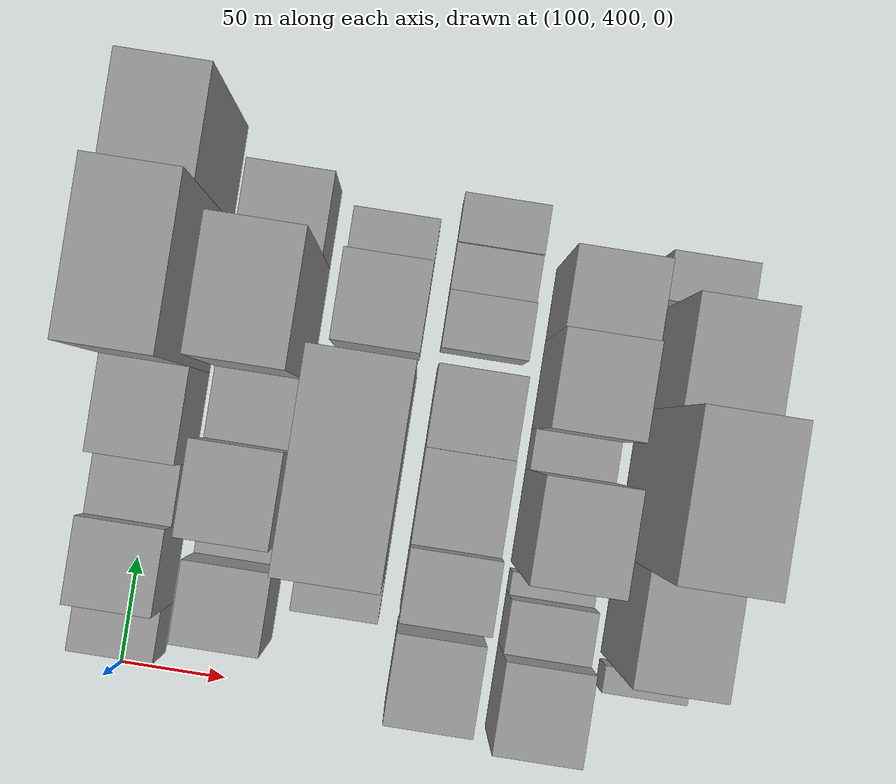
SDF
<sdf version="1.6">
 <world name="default">
  <model name="building_34">
   <static>1</static>
   <pose>100.0000 419.4224 0 0.000000 0.000000 0.000000</pose>
   <link name="link">
    <pose>0 0 21.00 0 0 0</pose>
    <collision name="collision"><geometry><box><size>40.0000 24.1710 42.0000</size></box></geometry></collision>
    <visual name="visual">
     <cast_shadows>0</cast_shadows>
     <geometry><box><size>40.0000 24.1710 42.0000</size></box></geometry>
     <material>
      <script>
       <uri>model://grey_wall/materials/scripts</uri>
       <uri>model://grey_wall/materials/textures</uri>
       <name>vrc/grey_wall</name>
      </script>
     </material>
    </visual>
   </link>
  </model>
  <model name="building_35">
   <static>1</static>
   <pose>100.0000 451.1182 0 0.000000 0.000000 0.000000</pose>
   <link name="link">
    <pose>0 0 36.00 0 0 0</pose>
    <collision name="collision"><geometry><box><size>40.0000 39.2206 72.0000</size></box></geometry></collision>
    <visual name="visual">
     <cast_shadows>0</cast_shadows>
     <geometry><box><size>40.0000 39.2206 72.0000</size></box></geometry>
     <material>
      <script>
       <uri>model://grey_wall/materials/scripts</uri>
       <uri>model://grey_wall/materials/textures</uri>
       <name>vrc/grey_wall</name>
      </script>
     </material>
    </visual>
   </link>
  </model>
  <model name="building_36">
   <static>1</static>
   <pose>100.0000 484.8960 0 0.000000 0.000000 0.000000</pose>
   <link name="link">
    <pose>0 0 25.50 0 0 0</pose>
    <collision name="collision"><geometry><box><size>40.0000 28.3350 51.0000</size></box></geometry></collision>
    <visual name="visual">
     <cast_shadows>0</cast_shadows>
     <geometry><box><size>40.0000 28.3350 51.0000</size></box></geometry>
     <material>
      <script>
       <uri>model://grey_wall/materials/scripts</uri>
       <uri>model://grey_wall/materials/textures</uri>
       <name>vrc/grey_wall</name>
      </script>
     </material>
    </visual>
   </link>
  </model>
  <model name="building_37">
   <static>1</static>
   <pose>100.0000 520.7871 0 0.000000 0.000000 0.000000</pose>
   <link name="link">
    <pose>0 0 37.50 0 0 0</pose>
    <collision name="collision"><geometry><box><size>40.0000 43.4472 75.0000</size></box></geometry></collision>
    <visual name="visual">
     <cast_shadows>0</cast_shadows>
     <geometry><box><size>40.0000 43.4472 75.0000</size></box></geometry>
     <material>
      <script>
       <uri>model://grey_wall/materials/scripts</uri>
       <uri>model://grey_wall/materials/textures</uri>
       <name>vrc/grey_wall</name>
      </script>
     </material>
    </visual>
   </link>
  </model>
  <model name="building_38">
   <static>1</static>
   <pose>100.0000 578.3830 0 0.000000 0.000000 0.000000</pose>
   <link name="link">
    <pose>0 0 90.00 0 0 0</pose>
    <collision name="collision"><geometry><box><size>40.0000 71.7446 180.0000</size></box></geometry></collision>
    <visual name="visual">
     <cast_shadows>0</cast_shadows>
     <geometry><box><size>40.0000 71.7446 180.0000</size></box></geometry>
     <material>
      <script>
       <uri>model://grey_wall/materials/scripts</uri>
       <uri>model://grey_wall/materials/textures</uri>
       <name>vrc/grey_wall</name>
      </script>
     </material>
    </visual>
   </link>
  </model>
  <model name="building_39">
   <static>1</static>
   <pose>100.0000 637.8473 0 0.000000 0.000000 0.000000</pose>
   <link name="link">
    <pose>0 0 73.50 0 0 0</pose>
    <collision name="collision"><geometry><box><size>40.0000 47.1841 147.0000</size></box></geometry></collision>
    <visual name="visual">
     <cast_shadows>0</cast_shadows>
     <geometry><box><size>40.0000 47.1841 147.0000</size></box></geometry>
     <material>
      <script>
       <uri>model://grey_wall/materials/scripts</uri>
       <uri>model://grey_wall/materials/textures</uri>
       <name>vrc/grey_wall</name>
      </script>
     </material>
    </visual>
   </link>
  </model>
  <model name="building_85">
   <static>1</static>
   <pose>149.0000 440.3022 0 0.000000 0.000000 0.000000</pose>
   <link name="link">
    <pose>0 0 36.00 0 0 0</pose>
    <collision name="collision"><geometry><box><size>40.0000 37.3948 72.0000</size></box></geometry></collision>
    <visual name="visual">
     <cast_shadows>0</cast_shadows>
     <geometry><box><size>40.0000 37.3948 72.0000</size></box></geometry>
     <material>
      <script>
       <uri>model://grey_wall/materials/scripts</uri>
       <uri>model://grey_wall/materials/textures</uri>
       <name>vrc/grey_wall</name>
      </script>
     </material>
    </visual>
   </link>
  </model>
  <model name="building_86">
   <static>1</static>
   <pose>149.0000 465.1572 0 0.000000 0.000000 0.000000</pose>
   <link name="link">
    <pose>0 0 13.50 0 0 0</pose>
    <collision name="collision"><geometry><box><size>40.0000 12.3152 27.0000</size></box></geometry></collision>
    <visual name="visual">
     <cast_shadows>0</cast_shadows>
     <geometry><box><size>40.0000 12.3152 27.0000</size></box></geometry>
     <material>
      <script>
       <uri>model://grey_wall/materials/scripts</uri>
       <uri>model://grey_wall/materials/textures</uri>
       <name>vrc/grey_wall</name>
      </script>
     </material>
    </visual>
   </link>
  </model>
  <model name="building_87">
   <static>1</static>
   <pose>149.0000 492.0625 0 0.000000 0.000000 0.000000</pose>
   <link name="link">
    <pose>0 0 57.00 0 0 0</pose>
    <collision name="collision"><geometry><box><size>40.0000 41.4954 114.0000</size></box></geometry></collision>
    <visual name="visual">
     <cast_shadows>0</cast_shadows>
     <geometry><box><size>40.0000 41.4954 114.0000</size></box></geometry>
     <material>
      <script>
       <uri>model://grey_wall/materials/scripts</uri>
       <uri>model://grey_wall/materials/textures</uri>
       <name>vrc/grey_wall</name>
      </script>
     </material>
    </visual>
   </link>
  </model>
  <model name="building_88">
   <static>1</static>
   <pose>149.0000 528.8958 0 0.000000 0.000000 0.000000</pose>
   <link name="link">
    <pose>0 0 30.00 0 0 0</pose>
    <collision name="collision"><geometry><box><size>40.0000 32.1713 60.0000</size></box></geometry></collision>
    <visual name="visual">
     <cast_shadows>0</cast_shadows>
     <geometry><box><size>40.0000 32.1713 60.0000</size></box></geometry>
     <material>
      <script>
       <uri>model://grey_wall/materials/scripts</uri>
       <uri>model://grey_wall/materials/textures</uri>
       <name>vrc/grey_wall</name>
      </script>
     </material>
    </visual>
   </link>
  </model>
  <model name="building_89">
   <static>1</static>
   <pose>149.0000 572.7408 0 0.000000 0.000000 0.000000</pose>
   <link name="link">
    <pose>0 0 87.00 0 0 0</pose>
    <collision name="collision"><geometry><box><size>40.0000 55.5187 174.0000</size></box></geometry></collision>
    <visual name="visual">
     <cast_shadows>0</cast_shadows>
     <geometry><box><size>40.0000 55.5187 174.0000</size></box></geometry>
     <material>
      <script>
       <uri>model://grey_wall/materials/scripts</uri>
       <uri>model://grey_wall/materials/textures</uri>
       <name>vrc/grey_wall</name>
      </script>
     </material>
    </visual>
   </link>
  </model>
  <model name="building_90">
   <static>1</static>
   <pose>149.0000 619.0913 0 0.000000 0.000000 0.000000</pose>
   <link name="link">
    <pose>0 0 33.00 0 0 0</pose>
    <collision name="collision"><geometry><box><size>40.0000 37.1822 66.0000</size></box></geometry></collision>
    <visual name="visual">
     <cast_shadows>0</cast_shadows>
     <geometry><box><size>40.0000 37.1822 66.0000</size></box></geometry>
     <material>
      <script>
       <uri>model://grey_wall/materials/scripts</uri>
       <uri>model://grey_wall/materials/textures</uri>
       <name>vrc/grey_wall</name>
      </script>
     </material>
    </visual>
   </link>
  </model>
  <model name="building_131">
   <static>1</static>
   <pose>198.0000 456.5234 0 0.000000 0.000000 0.000000</pose>
   <link name="link">
    <pose>0 0 25.50 0 0 0</pose>
    <collision name="collision"><geometry><box><size>40.0000 28.8919 51.0000</size></box></geometry></collision>
    <visual name="visual">
     <cast_shadows>0</cast_shadows>
     <geometry><box><size>40.0000 28.8919 51.0000</size></box></geometry>
     <material>
      <script>
       <uri>model://grey_wall/materials/scripts</uri>
       <uri>model://grey_wall/materials/textures</uri>
       <name>vrc/grey_wall</name>
      </script>
     </material>
    </visual>
   </link>
  </model>
  <model name="building_132">
   <static>1</static>
   <pose>198.0000 512.8881 0 0.000000 0.000000 0.000000</pose>
   <link name="link">
    <pose>0 0 109.50 0 0 0</pose>
    <collision name="collision"><geometry><box><size>40.0000 83.8376 219.0000</size></box></geometry></collision>
    <visual name="visual">
     <cast_shadows>0</cast_shadows>
     <geometry><box><size>40.0000 83.8376 219.0000</size></box></geometry>
     <material>
      <script>
       <uri>model://grey_wall/materials/scripts</uri>
       <uri>model://grey_wall/materials/textures</uri>
       <name>vrc/grey_wall</name>
      </script>
     </material>
    </visual>
   </link>
  </model>
  <model name="building_133">
   <static>1</static>
   <pose>198.0000 584.2615 0 0.000000 0.000000 0.000000</pose>
   <link name="link">
    <pose>0 0 37.50 0 0 0</pose>
    <collision name="collision"><geometry><box><size>40.0000 40.9090 75.0000</size></box></geometry></collision>
    <visual name="visual">
     <cast_shadows>0</cast_shadows>
     <geometry><box><size>40.0000 40.9090 75.0000</size></box></geometry>
     <material>
      <script>
       <uri>model://grey_wall/materials/scripts</uri>
       <uri>model://grey_wall/materials/textures</uri>
       <name>vrc/grey_wall</name>
      </script>
     </material>
    </visual>
   </link>
  </model>
  <model name="building_134">
   <static>1</static>
   <pose>198.0000 615.8576 0 0.000000 0.000000 0.000000</pose>
   <link name="link">
    <pose>0 0 21.00 0 0 0</pose>
    <collision name="collision"><geometry><box><size>40.0000 22.2832 42.0000</size></box></geometry></collision>
    <visual name="visual">
     <cast_shadows>0</cast_shadows>
     <geometry><box><size>40.0000 22.2832 42.0000</size></box></geometry>
     <material>
      <script>
       <uri>model://grey_wall/materials/scripts</uri>
       <uri>model://grey_wall/materials/textures</uri>
       <name>vrc/grey_wall</name>
      </script>
     </material>
    </visual>
   </link>
  </model>
  <model name="building_178">
   <static>1</static>
   <pose>247.0000 421.5525 0 0.000000 0.000000 0.000000</pose>
   <link name="link">
    <pose>0 0 36.00 0 0 0</pose>
    <collision name="collision"><geometry><box><size>40.0000 40.7395 72.0000</size></box></geometry></collision>
    <visual name="visual">
     <cast_shadows>0</cast_shadows>
     <geometry><box><size>40.0000 40.7395 72.0000</size></box></geometry>
     <material>
      <script>
       <uri>model://grey_wall/materials/scripts</uri>
       <uri>model://grey_wall/materials/textures</uri>
       <name>vrc/grey_wall</name>
      </script>
     </material>
    </visual>
   </link>
  </model>
  <model name="building_179">
   <static>1</static>
   <pose>247.0000 465.1388 0 0.000000 0.000000 0.000000</pose>
   <link name="link">
    <pose>0 0 48.00 0 0 0</pose>
    <collision name="collision"><geometry><box><size>40.0000 32.4333 96.0000</size></box></geometry></collision>
    <visual name="visual">
     <cast_shadows>0</cast_shadows>
     <geometry><box><size>40.0000 32.4333 96.0000</size></box></geometry>
     <material>
      <script>
       <uri>model://grey_wall/materials/scripts</uri>
       <uri>model://grey_wall/materials/textures</uri>
       <name>vrc/grey_wall</name>
      </script>
     </material>
    </visual>
   </link>
  </model>
  <model name="building_180">
   <static>1</static>
   <pose>247.0000 502.7271 0 0.000000 0.000000 0.000000</pose>
   <link name="link">
    <pose>0 0 37.50 0 0 0</pose>
    <collision name="collision"><geometry><box><size>40.0000 42.7432 75.0000</size></box></geometry></collision>
    <visual name="visual">
     <cast_shadows>0</cast_shadows>
     <geometry><box><size>40.0000 42.7432 75.0000</size></box></geometry>
     <material>
      <script>
       <uri>model://grey_wall/materials/scripts</uri>
       <uri>model://grey_wall/materials/textures</uri>
       <name>vrc/grey_wall</name>
      </script>
     </material>
    </visual>
   </link>
  </model>
  <model name="building_181">
   <static>1</static>
   <pose>247.0000 542.6879 0 0.000000 0.000000 0.000000</pose>
   <link name="link">
    <pose>0 0 36.00 0 0 0</pose>
    <collision name="collision"><geometry><box><size>40.0000 37.1784 72.0000</size></box></geometry></collision>
    <visual name="visual">
     <cast_shadows>0</cast_shadows>
     <geometry><box><size>40.0000 37.1784 72.0000</size></box></geometry>
     <material>
      <script>
       <uri>model://grey_wall/materials/scripts</uri>
       <uri>model://grey_wall/materials/textures</uri>
       <name>vrc/grey_wall</name>
      </script>
     </material>
    </visual>
   </link>
  </model>
  <model name="building_182">
   <static>1</static>
   <pose>247.0000 582.5603 0 0.000000 0.000000 0.000000</pose>
   <link name="link">
    <pose>0 0 24.00 0 0 0</pose>
    <collision name="collision"><geometry><box><size>40.0000 26.5664 48.0000</size></box></geometry></collision>
    <visual name="visual">
     <cast_shadows>0</cast_shadows>
     <geometry><box><size>40.0000 26.5664 48.0000</size></box></geometry>
     <material>
      <script>
       <uri>model://grey_wall/materials/scripts</uri>
       <uri>model://grey_wall/materials/textures</uri>
       <name>vrc/grey_wall</name>
      </script>
     </material>
    </visual>
   </link>
  </model>
  <model name="building_183">
   <static>1</static>
   <pose>247.0000 607.0561 0 0.000000 0.000000 0.000000</pose>
   <link name="link">
    <pose>0 0 19.50 0 0 0</pose>
    <collision name="collision"><geometry><box><size>40.0000 22.4253 39.0000</size></box></geometry></collision>
    <visual name="visual">
     <cast_shadows>0</cast_shadows>
     <geometry><box><size>40.0000 22.4253 39.0000</size></box></geometry>
     <material>
      <script>
       <uri>model://grey_wall/materials/scripts</uri>
       <uri>model://grey_wall/materials/textures</uri>
       <name>vrc/grey_wall</name>
      </script>
     </material>
    </visual>
   </link>
  </model>
  <model name="building_184">
   <static>1</static>
   <pose>247.0000 629.6428 0 0.000000 0.000000 0.000000</pose>
   <link name="link">
    <pose>0 0 21.00 0 0 0</pose>
    <collision name="collision"><geometry><box><size>40.0000 22.7481 42.0000</size></box></geometry></collision>
    <visual name="visual">
     <cast_shadows>0</cast_shadows>
     <geometry><box><size>40.0000 22.7481 42.0000</size></box></geometry>
     <material>
      <script>
       <uri>model://grey_wall/materials/scripts</uri>
       <uri>model://grey_wall/materials/textures</uri>
       <name>vrc/grey_wall</name>
      </script>
     </material>
    </visual>
   </link>
  </model>
  <model name="building_227">
   <static>1</static>
   <pose>296.0000 416.7489 0 0.000000 0.000000 0.000000</pose>
   <link name="link">
    <pose>0 0 37.50 0 0 0</pose>
    <collision name="collision"><geometry><box><size>40.0000 41.2842 75.0000</size></box></geometry></collision>
    <visual name="visual">
     <cast_shadows>0</cast_shadows>
     <geometry><box><size>40.0000 41.2842 75.0000</size></box></geometry>
     <material>
      <script>
       <uri>model://grey_wall/materials/scripts</uri>
       <uri>model://grey_wall/materials/textures</uri>
       <name>vrc/grey_wall</name>
      </script>
     </material>
    </visual>
   </link>
  </model>
  <model name="building_228">
   <static>1</static>
   <pose>296.0000 449.7520 0 0.000000 0.000000 0.000000</pose>
   <link name="link">
    <pose>0 0 24.00 0 0 0</pose>
    <collision name="collision"><geometry><box><size>40.0000 24.7220 48.0000</size></box></geometry></collision>
    <visual name="visual">
     <cast_shadows>0</cast_shadows>
     <geometry><box><size>40.0000 24.7220 48.0000</size></box></geometry>
     <material>
      <script>
       <uri>model://grey_wall/materials/scripts</uri>
       <uri>model://grey_wall/materials/textures</uri>
       <name>vrc/grey_wall</name>
      </script>
     </material>
    </visual>
   </link>
  </model>
  <model name="building_229">
   <static>1</static>
   <pose>296.0000 467.5545 0 0.000000 0.000000 0.000000</pose>
   <link name="link">
    <pose>0 0 12.00 0 0 0</pose>
    <collision name="collision"><geometry><box><size>40.0000 10.8832 24.0000</size></box></geometry></collision>
    <visual name="visual">
     <cast_shadows>0</cast_shadows>
     <geometry><box><size>40.0000 10.8832 24.0000</size></box></geometry>
     <material>
      <script>
       <uri>model://grey_wall/materials/scripts</uri>
       <uri>model://grey_wall/materials/textures</uri>
       <name>vrc/grey_wall</name>
      </script>
     </material>
    </visual>
   </link>
  </model>
  <model name="building_230">
   <static>1</static>
   <pose>296.0000 498.4455 0 0.000000 0.000000 0.000000</pose>
   <link name="link">
    <pose>0 0 67.50 0 0 0</pose>
    <collision name="collision"><geometry><box><size>40.0000 44.8987 135.0000</size></box></geometry></collision>
    <visual name="visual">
     <cast_shadows>0</cast_shadows>
     <geometry><box><size>40.0000 44.8987 135.0000</size></box></geometry>
     <material>
      <script>
       <uri>model://grey_wall/materials/scripts</uri>
       <uri>model://grey_wall/materials/textures</uri>
       <name>vrc/grey_wall</name>
      </script>
     </material>
    </visual>
   </link>
  </model>
  <model name="building_231">
   <static>1</static>
   <pose>296.0000 530.4264 0 0.000000 0.000000 0.000000</pose>
   <link name="link">
    <pose>0 0 16.50 0 0 0</pose>
    <collision name="collision"><geometry><box><size>40.0000 19.0630 33.0000</size></box></geometry></collision>
    <visual name="visual">
     <cast_shadows>0</cast_shadows>
     <geometry><box><size>40.0000 19.0630 33.0000</size></box></geometry>
     <material>
      <script>
       <uri>model://grey_wall/materials/scripts</uri>
       <uri>model://grey_wall/materials/textures</uri>
       <name>vrc/grey_wall</name>
      </script>
     </material>
    </visual>
   </link>
  </model>
  <model name="building_232">
   <static>1</static>
   <pose>296.0000 561.0645 0 0.000000 0.000000 0.000000</pose>
   <link name="link">
    <pose>0 0 60.00 0 0 0</pose>
    <collision name="collision"><geometry><box><size>40.0000 42.2134 120.0000</size></box></geometry></collision>
    <visual name="visual">
     <cast_shadows>0</cast_shadows>
     <geometry><box><size>40.0000 42.2134 120.0000</size></box></geometry>
     <material>
      <script>
       <uri>model://grey_wall/materials/scripts</uri>
       <uri>model://grey_wall/materials/textures</uri>
       <name>vrc/grey_wall</name>
      </script>
     </material>
    </visual>
   </link>
  </model>
  <model name="building_233">
   <static>1</static>
   <pose>296.0000 599.6522 0 0.000000 0.000000 0.000000</pose>
   <link name="link">
    <pose>0 0 57.00 0 0 0</pose>
    <collision name="collision"><geometry><box><size>40.0000 34.9619 114.0000</size></box></geometry></collision>
    <visual name="visual">
     <cast_shadows>0</cast_shadows>
     <geometry><box><size>40.0000 34.9619 114.0000</size></box></geometry>
     <material>
      <script>
       <uri>model://grey_wall/materials/scripts</uri>
       <uri>model://grey_wall/materials/textures</uri>
       <name>vrc/grey_wall</name>
      </script>
     </material>
    </visual>
   </link>
  </model>
  <model name="building_273">
   <static>1</static>
   <pose>345.0000 430.6982 0 0.000000 0.000000 0.000000</pose>
   <link name="link">
    <pose>0 0 13.50 0 0 0</pose>
    <collision name="collision"><geometry><box><size>40.0000 12.5830 27.0000</size></box></geometry></collision>
    <visual name="visual">
     <cast_shadows>0</cast_shadows>
     <geometry><box><size>40.0000 12.5830 27.0000</size></box></geometry>
     <material>
      <script>
       <uri>model://grey_wall/materials/scripts</uri>
       <uri>model://grey_wall/materials/textures</uri>
       <name>vrc/grey_wall</name>
      </script>
     </material>
    </visual>
   </link>
  </model>
  <model name="building_274">
   <static>1</static>
   <pose>345.0000 464.3057 0 0.000000 0.000000 0.000000</pose>
   <link name="link">
    <pose>0 0 61.50 0 0 0</pose>
    <collision name="collision"><geometry><box><size>40.0000 48.6320 123.0000</size></box></geometry></collision>
    <visual name="visual">
     <cast_shadows>0</cast_shadows>
     <geometry><box><size>40.0000 48.6320 123.0000</size></box></geometry>
     <material>
      <script>
       <uri>model://grey_wall/materials/scripts</uri>
       <uri>model://grey_wall/materials/textures</uri>
       <name>vrc/grey_wall</name>
      </script>
     </material>
    </visual>
   </link>
  </model>
  <model name="building_275">
   <static>1</static>
   <pose>345.0000 522.5436 0 0.000000 0.000000 0.000000</pose>
   <link name="link">
    <pose>0 0 96.00 0 0 0</pose>
    <collision name="collision"><geometry><box><size>40.0000 67.8439 192.0000</size></box></geometry></collision>
    <visual name="visual">
     <cast_shadows>0</cast_shadows>
     <geometry><box><size>40.0000 67.8439 192.0000</size></box></geometry>
     <material>
      <script>
       <uri>model://grey_wall/materials/scripts</uri>
       <uri>model://grey_wall/materials/textures</uri>
       <name>vrc/grey_wall</name>
      </script>
     </material>
    </visual>
   </link>
  </model>
  <model name="building_276">
   <static>1</static>
   <pose>345.0000 579.6224 0 0.000000 0.000000 0.000000</pose>
   <link name="link">
    <pose>0 0 70.50 0 0 0</pose>
    <collision name="collision"><geometry><box><size>40.0000 46.3136 141.0000</size></box></geometry></collision>
    <visual name="visual">
     <cast_shadows>0</cast_shadows>
     <geometry><box><size>40.0000 46.3136 141.0000</size></box></geometry>
     <material>
      <script>
       <uri>model://grey_wall/materials/scripts</uri>
       <uri>model://grey_wall/materials/textures</uri>
       <name>vrc/grey_wall</name>
      </script>
     </material>
    </visual>
   </link>
  </model>
  <model name="building_277">
   <static>1</static>
   <pose>345.0000 618.3172 0 0.000000 0.000000 0.000000</pose>
   <link name="link">
    <pose>0 0 21.00 0 0 0</pose>
    <collision name="collision"><geometry><box><size>40.0000 23.0759 42.0000</size></box></geometry></collision>
    <visual name="visual">
     <cast_shadows>0</cast_shadows>
     <geometry><box><size>40.0000 23.0759 42.0000</size></box></geometry>
     <material>
      <script>
       <uri>model://grey_wall/materials/scripts</uri>
       <uri>model://grey_wall/materials/textures</uri>
       <name>vrc/grey_wall</name>
      </script>
     </material>
    </visual>
   </link>
  </model>
 </world>
</sdf>
